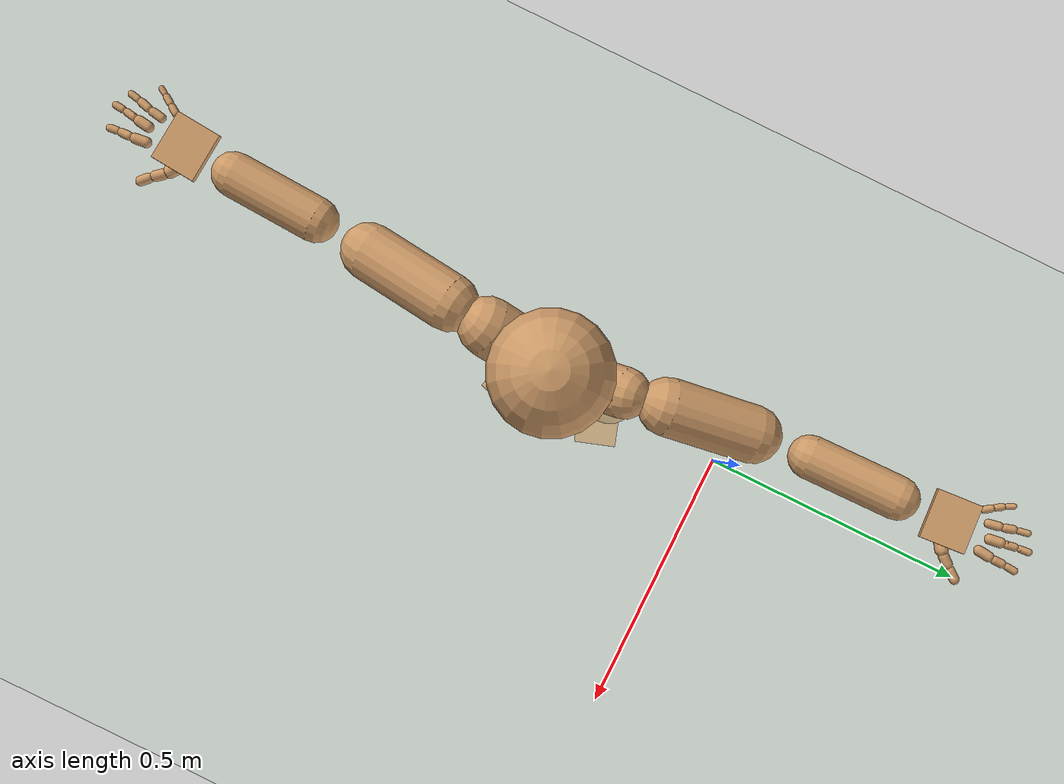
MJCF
<mujoco model="humanoid">
  <compiler coordinate="local" angle="radian"/>
  <default>
    <joint damping="0.0" armature="0.01" stiffness="0.0" limited="true"/>
    <geom conaffinity="1" condim="3" contype="7" margin="0.001" rgba="0.8 0.6 .4 1"/>
  </default>
  <asset>
    <texture type="skybox" builtin="gradient" rgb1=".4 .5 .6" rgb2="0 0 0" width="100" height="100"/>
    <texture builtin="flat" height="1278" mark="cross" markrgb="1 1 1" name="texgeom" random="0.01" rgb1="0.8 0.6 0.4" rgb2="0.8 0.6 0.4" type="cube" width="127"/>
    <texture builtin="checker" height="100" name="texplane" rgb1="0 0 0" rgb2="0.8 0.8 0.8" type="2d" width="100"/>
    <material name="MatPlane" reflectance="0.5" shininess="1" specular="1" texrepeat="60 60" texture="texplane"/>
    <material name="geom" texture="texgeom" texuniform="true"/>
  </asset>
  <worldbody>
    <light cutoff="100" diffuse="1 1 1" dir="-0 0 -1.3" directional="true" exponent="1" pos="0 0 1.3" specular=".1 .1 .1"/>
    <geom conaffinity="1" condim="3" name="floor" pos="0 0 0" rgba="0.8 0.9 0.8 1" size="100 100 .2" type="plane" material="MatPlane"/>
    <body name="Pelvis" pos="0.0006 -0.3352 0.0057">
      <freejoint name="Pelvis"/>
      <geom type="sphere" contype="1" conaffinity="1" density="500" size="0.0934" pos="0.0000 0.0000 0.0000" name="Pelvis"/>
      <body name="L_Hip" pos="-0.0282 0.0543 -0.0882">
        <joint name="L_Hip_x" type="hinge" pos="0 0 0" axis="1 0 0" stiffness="800" damping="80" armature="0.02" range="-180.0000 180.0000"/>
        <joint name="L_Hip_y" type="hinge" pos="0 0 0" axis="0 1 0" stiffness="800" damping="80" armature="0.02" range="-180.0000 180.0000"/>
        <joint name="L_Hip_z" type="hinge" pos="0 0 0" axis="0 0 1" stiffness="800" damping="80" armature="0.02" range="-180.0000 180.0000"/>
        <geom type="capsule" contype="1" conaffinity="1" density="500" fromto="-0.0022 0.0142 -0.0803 -0.0087 0.0569 -0.3213" size="0.0592" name="L_Hip"/>
        <body name="L_Knee" pos="-0.0108 0.0712 -0.4017">
          <joint name="L_Knee_x" type="hinge" pos="0 0 0" axis="1 0 0" stiffness="800" damping="80" armature="0.02" range="-180.0000 180.0000"/>
          <joint name="L_Knee_y" type="hinge" pos="0 0 0" axis="0 1 0" stiffness="800" damping="80" armature="0.02" range="-180.0000 180.0000"/>
          <joint name="L_Knee_z" type="hinge" pos="0 0 0" axis="0 0 1" stiffness="800" damping="80" armature="0.02" range="-180.0000 180.0000"/>
          <geom type="capsule" contype="1" conaffinity="1" density="500" fromto="-0.0081 -0.0087 -0.0831 -0.0324 -0.0348 -0.3323" size="0.0531" name="L_Knee"/>
          <body name="L_Ankle" pos="-0.0405 -0.0435 -0.4153">
            <joint name="L_Ankle_x" type="hinge" pos="0 0 0" axis="1 0 0" stiffness="800" damping="80" armature="0.02" range="-180.0000 180.0000"/>
            <joint name="L_Ankle_y" type="hinge" pos="0 0 0" axis="0 1 0" stiffness="800" damping="80" armature="0.02" range="-180.0000 180.0000"/>
            <joint name="L_Ankle_z" type="hinge" pos="0 0 0" axis="0 0 1" stiffness="800" damping="80" armature="0.02" range="-180.0000 180.0000"/>
            <geom type="box" contype="1" conaffinity="1" density="500" pos="0.0650 0.0215 -0.0295" size="0.0888 0.0505 0.0206" quat="0.9873 0.0000 0.0000 0.1590" name="L_Ankle"/>
            <body name="L_Toe" pos="0.1301 0.043 -0.059">
              <joint name="L_Toe_x" type="hinge" pos="0 0 0" axis="1 0 0" stiffness="500" damping="50" armature="0.02" range="-180.0000 180.0000"/>
              <joint name="L_Toe_y" type="hinge" pos="0 0 0" axis="0 1 0" stiffness="500" damping="50" armature="0.02" range="-180.0000 180.0000"/>
              <joint name="L_Toe_z" type="hinge" pos="0 0 0" axis="0 0 1" stiffness="500" damping="50" armature="0.02" range="-180.0000 180.0000"/>
              <geom type="box" contype="1" conaffinity="1" density="500" pos="0.0000 0.0000 0.0298" size="0.001 0.0024 0.001" quat="0.9865 0.0000 0.0000 0.1635" name="L_Toe"/>
            </body>
          </body>
        </body>
      </body>
      <body name="R_Hip" pos="-0.0216 -0.0552 -0.0974">
        <joint name="R_Hip_x" type="hinge" pos="0 0 0" axis="1 0 0" stiffness="800" damping="80" armature="0.02" range="-180.0000 180.0000"/>
        <joint name="R_Hip_y" type="hinge" pos="0 0 0" axis="0 1 0" stiffness="800" damping="80" armature="0.02" range="-180.0000 180.0000"/>
        <joint name="R_Hip_z" type="hinge" pos="0 0 0" axis="0 0 1" stiffness="800" damping="80" armature="0.02" range="-180.0000 180.0000"/>
        <geom type="capsule" contype="1" conaffinity="1" density="500" fromto="-0.0036 -0.0109 -0.0772 -0.0142 -0.0438 -0.3086" size="0.059" name="R_Hip"/>
        <body name="R_Knee" pos="-0.0178 -0.0547 -0.3858">
          <joint name="R_Knee_x" type="hinge" pos="0 0 0" axis="1 0 0" stiffness="800" damping="80" armature="0.02" range="-180.0000 180.0000"/>
          <joint name="R_Knee_y" type="hinge" pos="0 0 0" axis="0 1 0" stiffness="800" damping="80" armature="0.02" range="-180.0000 180.0000"/>
          <joint name="R_Knee_z" type="hinge" pos="0 0 0" axis="0 0 1" stiffness="800" damping="80" armature="0.02" range="-180.0000 180.0000"/>
          <geom type="capsule" contype="1" conaffinity="1" density="500" fromto="-0.0080 0.0032 -0.0858 -0.0321 0.0128 -0.3431" size="0.053" name="R_Knee"/>
          <body name="R_Ankle" pos="-0.0401 0.016 -0.4288">
            <joint name="R_Ankle_x" type="hinge" pos="0 0 0" axis="1 0 0" stiffness="800" damping="80" armature="0.02" range="-180.0000 180.0000"/>
            <joint name="R_Ankle_y" type="hinge" pos="0 0 0" axis="0 1 0" stiffness="800" damping="80" armature="0.02" range="-180.0000 180.0000"/>
            <joint name="R_Ankle_z" type="hinge" pos="0 0 0" axis="0 0 1" stiffness="800" damping="80" armature="0.02" range="-180.0000 180.0000"/>
            <geom type="box" contype="1" conaffinity="1" density="500" pos="0.0683 -0.0173 -0.0293" size="0.0888 0.0505 0.025" quat="0.9923 0.0000 0.0000 -0.1238" name="R_Ankle"/>
            <body name="R_Toe" pos="0.1366 -0.0346 -0.0585">
              <joint name="R_Toe_x" type="hinge" pos="0 0 0" axis="1 0 0" stiffness="500" damping="50" armature="0.02" range="-180.0000 180.0000"/>
              <joint name="R_Toe_y" type="hinge" pos="0 0 0" axis="0 1 0" stiffness="500" damping="50" armature="0.02" range="-180.0000 180.0000"/>
              <joint name="R_Toe_z" type="hinge" pos="0 0 0" axis="0 0 1" stiffness="500" damping="50" armature="0.02" range="-180.0000 180.0000"/>
              <geom type="box" contype="1" conaffinity="1" density="500" pos="0.0000 0.0000 0.0251" size="0.001 0.0024 0.001" quat="0.9933 0.0000 0.0000 -0.1153" name="R_Toe"/>
            </body>
          </body>
        </body>
      </body>
      <body name="Torso" pos="-0.0329 -0.0017 0.0987">
        <joint name="Torso_x" type="hinge" pos="0 0 0" axis="1 0 0" stiffness="1000" damping="100" armature="0.02" range="-180.0000 180.0000"/>
        <joint name="Torso_y" type="hinge" pos="0 0 0" axis="0 1 0" stiffness="1000" damping="100" armature="0.02" range="-180.0000 180.0000"/>
        <joint name="Torso_z" type="hinge" pos="0 0 0" axis="0 0 1" stiffness="1000" damping="100" armature="0.02" range="-180.0000 180.0000"/>
        <geom type="capsule" contype="1" conaffinity="1" density="500" fromto="0.0026 0.0031 0.0788 0.0017 0.0021 0.0525" size="0.0569" name="Torso"/>
        <body name="Spine" pos="0.0044 0.0052 0.1313">
          <joint name="Spine_x" type="hinge" pos="0 0 0" axis="1 0 0" stiffness="1000" damping="100" armature="0.02" range="-180.0000 180.0000"/>
          <joint name="Spine_y" type="hinge" pos="0 0 0" axis="0 1 0" stiffness="1000" damping="100" armature="0.02" range="-180.0000 180.0000"/>
          <joint name="Spine_z" type="hinge" pos="0 0 0" axis="0 0 1" stiffness="1000" damping="100" armature="0.02" range="-180.0000 180.0000"/>
          <geom type="capsule" contype="1" conaffinity="1" density="500" fromto="0.0108 -0.0028 0.0311 0.0072 -0.0019 0.0207" size="0.0734" name="Spine"/>
          <body name="Chest" pos="0.018 -0.0047 0.0518">
            <joint name="Chest_x" type="hinge" pos="0 0 0" axis="1 0 0" stiffness="1000" damping="100" armature="0.02" range="-180.0000 180.0000"/>
            <joint name="Chest_y" type="hinge" pos="0 0 0" axis="0 1 0" stiffness="1000" damping="100" armature="0.02" range="-180.0000 180.0000"/>
            <joint name="Chest_z" type="hinge" pos="0 0 0" axis="0 0 1" stiffness="1000" damping="100" armature="0.02" range="-180.0000 180.0000"/>
            <geom type="capsule" contype="1" conaffinity="1" density="500" fromto="-0.0068 -0.0012 0.0591 -0.0045 -0.0008 0.0394" size="0.0904" name="Chest"/>
            <body name="Neck" pos="-0.0206 -0.006 0.1539">
              <joint name="Neck_x" type="hinge" pos="0 0 0" axis="1 0 0" stiffness="500" damping="50" armature="0.02" range="-180.0000 180.0000"/>
              <joint name="Neck_y" type="hinge" pos="0 0 0" axis="0 1 0" stiffness="500" damping="50" armature="0.02" range="-180.0000 180.0000"/>
              <joint name="Neck_z" type="hinge" pos="0 0 0" axis="0 0 1" stiffness="500" damping="50" armature="0.02" range="-180.0000 180.0000"/>
              <geom type="capsule" contype="1" conaffinity="1" density="500" fromto="0.0068 0.0037 0.0358 0.0273 0.0148 0.1432" size="0.0387" name="Neck"/>
              <body name="Head" pos="0.0341 0.0185 0.179">
                <joint name="Head_x" type="hinge" pos="0 0 0" axis="1 0 0" stiffness="500" damping="50" armature="0.02" range="-180.0000 180.0000"/>
                <joint name="Head_y" type="hinge" pos="0 0 0" axis="0 1 0" stiffness="500" damping="50" armature="0.02" range="-180.0000 180.0000"/>
                <joint name="Head_z" type="hinge" pos="0 0 0" axis="0 0 1" stiffness="500" damping="50" armature="0.02" range="-180.0000 180.0000"/>
                <geom type="sphere" contype="1" conaffinity="1" density="500" size="0.0984" pos="0.0000 0.0000 0.0000" name="Head"/>
              </body>
            </body>
            <body name="L_Thorax" pos="-0.005 0.0358 0.0707">
              <joint name="L_Thorax_x" type="hinge" pos="0 0 0" axis="1 0 0" stiffness="500" damping="50" armature="0.02" range="-180.0000 180.0000"/>
              <joint name="L_Thorax_y" type="hinge" pos="0 0 0" axis="0 1 0" stiffness="500" damping="50" armature="0.02" range="-180.0000 180.0000"/>
              <joint name="L_Thorax_z" type="hinge" pos="0 0 0" axis="0 0 1" stiffness="500" damping="50" armature="0.02" range="-180.0000 180.0000"/>
              <geom type="capsule" contype="1" conaffinity="1" density="500" fromto="-0.0029 0.0226 0.0101 -0.0115 0.0905 0.0406" size="0.0433" name="L_Thorax"/>
              <body name="L_Shoulder" pos="-0.0144 0.1131 0.0507">
                <joint name="L_Shoulder_x" type="hinge" pos="0 0 0" axis="1 0 0" stiffness="500" damping="50" armature="0.02" range="-180.0000 180.0000"/>
                <joint name="L_Shoulder_y" type="hinge" pos="0 0 0" axis="0 1 0" stiffness="500" damping="50" armature="0.02" range="-180.0000 180.0000"/>
                <joint name="L_Shoulder_z" type="hinge" pos="0 0 0" axis="0 0 1" stiffness="500" damping="50" armature="0.02" range="-180.0000 180.0000"/>
                <geom type="capsule" contype="1" conaffinity="1" density="500" fromto="-0.0077 0.0496 -0.0143 -0.0310 0.1985 -0.0573" size="0.0492" name="L_Shoulder"/>
                <body name="L_Elbow" pos="-0.0387 0.2481 -0.0716">
                  <joint name="L_Elbow_x" type="hinge" pos="0 0 0" axis="1 0 0" stiffness="500" damping="50" armature="0.02" range="-720.0000 720.0000"/>
                  <joint name="L_Elbow_y" type="hinge" pos="0 0 0" axis="0 1 0" stiffness="500" damping="50" armature="0.02" range="-720.0000 720.0000"/>
                  <joint name="L_Elbow_z" type="hinge" pos="0 0 0" axis="0 0 1" stiffness="500" damping="50" armature="0.02" range="-720.0000 720.0000"/>
                  <geom type="capsule" contype="1" conaffinity="1" density="500" fromto="-0.0008 0.0531 0.0040 -0.0031 0.2124 0.0160" size="0.0373" name="L_Elbow"/>
                  <body name="L_Wrist" pos="-0.0039 0.2655 0.02">
                    <joint name="L_Wrist_x" type="hinge" pos="0 0 0" axis="1 0 0" stiffness="300" damping="30" armature="0.02" range="-180.0000 180.0000"/>
                    <joint name="L_Wrist_y" type="hinge" pos="0 0 0" axis="0 1 0" stiffness="300" damping="30" armature="0.02" range="-180.0000 180.0000"/>
                    <joint name="L_Wrist_z" type="hinge" pos="0 0 0" axis="0 0 1" stiffness="300" damping="30" armature="0.02" range="-180.0000 180.0000"/>
                    <geom type="box" contype="1" conaffinity="1" density="500" pos="-0.0031 0.0427 -0.0060" size="0.0396 0.0426 0.0071" quat="0.7326 0.0000 0.0000 -0.6807" name="L_Wrist"/>
                    <body name="L_Index1" pos="0.0188 0.1002 -0.0094">
                      <joint name="L_Index1_x" type="hinge" pos="0 0 0" axis="1 0 0" stiffness="100" damping="10" armature="0.02" range="-180.0000 180.0000"/>
                      <joint name="L_Index1_y" type="hinge" pos="0 0 0" axis="0 1 0" stiffness="100" damping="10" armature="0.02" range="-180.0000 180.0000"/>
                      <joint name="L_Index1_z" type="hinge" pos="0 0 0" axis="0 0 1" stiffness="100" damping="10" armature="0.02" range="-180.0000 180.0000"/>
                      <geom type="capsule" contype="1" conaffinity="1" density="500" fromto="0.0007 0.0065 0.0002 0.0029 0.0259 0.0010" size="0.0089" name="L_Index1"/>
                      <body name="L_Index2" pos="0.0037 0.0324 0.0012">
                        <joint name="L_Index2_x" type="hinge" pos="0 0 0" axis="1 0 0" stiffness="100" damping="10" armature="0.02" range="-180.0000 180.0000"/>
                        <joint name="L_Index2_y" type="hinge" pos="0 0 0" axis="0 1 0" stiffness="100" damping="10" armature="0.02" range="-180.0000 180.0000"/>
                        <joint name="L_Index2_z" type="hinge" pos="0 0 0" axis="0 0 1" stiffness="100" damping="10" armature="0.02" range="-180.0000 180.0000"/>
                        <geom type="capsule" contype="1" conaffinity="1" density="500" fromto="0.0000 0.0046 -0.0005 0.0001 0.0183 -0.0021" size="0.0074" name="L_Index2"/>
                        <body name="L_Index3" pos="0.0001 0.0228 -0.0027">
                          <joint name="L_Index3_x" type="hinge" pos="0 0 0" axis="1 0 0" stiffness="100" damping="10" armature="0.02" range="-180.0000 180.0000"/>
                          <joint name="L_Index3_y" type="hinge" pos="0 0 0" axis="0 1 0" stiffness="100" damping="10" armature="0.02" range="-180.0000 180.0000"/>
                          <joint name="L_Index3_z" type="hinge" pos="0 0 0" axis="0 0 1" stiffness="100" damping="10" armature="0.02" range="-180.0000 180.0000"/>
                          <geom type="capsule" contype="1" conaffinity="1" density="500" fromto="0.0004 0.0050 -0.0001 0.0017 0.0199 -0.0005" size="0.0063" name="L_Index3"/>
                        </body>
                      </body>
                    </body>
                    <body name="L_Middle1" pos="-0.0042 0.1079 -0.007">
                      <joint name="L_Middle1_x" type="hinge" pos="0 0 0" axis="1 0 0" stiffness="100" damping="10" armature="0.02" range="-180.0000 180.0000"/>
                      <joint name="L_Middle1_y" type="hinge" pos="0 0 0" axis="0 1 0" stiffness="100" damping="10" armature="0.02" range="-180.0000 180.0000"/>
                      <joint name="L_Middle1_z" type="hinge" pos="0 0 0" axis="0 0 1" stiffness="100" damping="10" armature="0.02" range="-180.0000 180.0000"/>
                      <geom type="capsule" contype="1" conaffinity="1" density="500" fromto="-0.0008 0.0062 0.0000 -0.0033 0.0246 0.0001" size="0.009" name="L_Middle1"/>
                      <body name="L_Middle2" pos="-0.0041 0.0308 0.0001">
                        <joint name="L_Middle2_x" type="hinge" pos="0 0 0" axis="1 0 0" stiffness="100" damping="10" armature="0.02" range="-180.0000 180.0000"/>
                        <joint name="L_Middle2_y" type="hinge" pos="0 0 0" axis="0 1 0" stiffness="100" damping="10" armature="0.02" range="-180.0000 180.0000"/>
                        <joint name="L_Middle2_z" type="hinge" pos="0 0 0" axis="0 0 1" stiffness="100" damping="10" armature="0.02" range="-180.0000 180.0000"/>
                        <geom type="capsule" contype="1" conaffinity="1" density="500" fromto="-0.0008 0.0047 -0.0004 -0.0033 0.0189 -0.0018" size="0.0067" name="L_Middle2"/>
                        <body name="L_Middle3" pos="-0.0041 0.0236 -0.0022">
                          <joint name="L_Middle3_x" type="hinge" pos="0 0 0" axis="1 0 0" stiffness="100" damping="10" armature="0.02" range="-180.0000 180.0000"/>
                          <joint name="L_Middle3_y" type="hinge" pos="0 0 0" axis="0 1 0" stiffness="100" damping="10" armature="0.02" range="-180.0000 180.0000"/>
                          <joint name="L_Middle3_z" type="hinge" pos="0 0 0" axis="0 0 1" stiffness="100" damping="10" armature="0.02" range="-180.0000 180.0000"/>
                          <geom type="capsule" contype="1" conaffinity="1" density="500" fromto="-0.0004 0.0051 -0.0000 -0.0017 0.0205 -0.0002" size="0.0061" name="L_Middle3"/>
                        </body>
                      </body>
                    </body>
                    <body name="L_Pinky1" pos="-0.0435 0.0834 -0.0148">
                      <joint name="L_Pinky1_x" type="hinge" pos="0 0 0" axis="1 0 0" stiffness="100" damping="10" armature="0.02" range="-180.0000 180.0000"/>
                      <joint name="L_Pinky1_y" type="hinge" pos="0 0 0" axis="0 1 0" stiffness="100" damping="10" armature="0.02" range="-180.0000 180.0000"/>
                      <joint name="L_Pinky1_z" type="hinge" pos="0 0 0" axis="0 0 1" stiffness="100" damping="10" armature="0.02" range="-180.0000 180.0000"/>
                      <geom type="capsule" contype="1" conaffinity="1" density="500" fromto="-0.0023 0.0032 -0.0004 -0.0091 0.0130 -0.0014" size="0.0065" name="L_Pinky1"/>
                      <body name="L_Pinky2" pos="-0.0114 0.0162 -0.0018">
                        <joint name="L_Pinky2_x" type="hinge" pos="0 0 0" axis="1 0 0" stiffness="100" damping="10" armature="0.02" range="-180.0000 180.0000"/>
                        <joint name="L_Pinky2_y" type="hinge" pos="0 0 0" axis="0 1 0" stiffness="100" damping="10" armature="0.02" range="-180.0000 180.0000"/>
                        <joint name="L_Pinky2_z" type="hinge" pos="0 0 0" axis="0 0 1" stiffness="100" damping="10" armature="0.02" range="-180.0000 180.0000"/>
                        <geom type="capsule" contype="1" conaffinity="1" density="500" fromto="-0.0022 0.0032 -0.0004 -0.0086 0.0128 -0.0014" size="0.0062" name="L_Pinky2"/>
                        <body name="L_Pinky3" pos="-0.0108 0.016 -0.0018">
                          <joint name="L_Pinky3_x" type="hinge" pos="0 0 0" axis="1 0 0" stiffness="100" damping="10" armature="0.02" range="-180.0000 180.0000"/>
                          <joint name="L_Pinky3_y" type="hinge" pos="0 0 0" axis="0 1 0" stiffness="100" damping="10" armature="0.02" range="-180.0000 180.0000"/>
                          <joint name="L_Pinky3_z" type="hinge" pos="0 0 0" axis="0 0 1" stiffness="100" damping="10" armature="0.02" range="-180.0000 180.0000"/>
                          <geom type="capsule" contype="1" conaffinity="1" density="500" fromto="-0.0018 0.0036 0.0000 -0.0070 0.0144 0.0002" size="0.0048" name="L_Pinky3"/>
                        </body>
                      </body>
                    </body>
                    <body name="L_Ring1" pos="-0.0271 0.0963 -0.0097">
                      <joint name="L_Ring1_x" type="hinge" pos="0 0 0" axis="1 0 0" stiffness="100" damping="10" armature="0.02" range="-180.0000 180.0000"/>
                      <joint name="L_Ring1_y" type="hinge" pos="0 0 0" axis="0 1 0" stiffness="100" damping="10" armature="0.02" range="-180.0000 180.0000"/>
                      <joint name="L_Ring1_z" type="hinge" pos="0 0 0" axis="0 0 1" stiffness="100" damping="10" armature="0.02" range="-180.0000 180.0000"/>
                      <geom type="capsule" contype="1" conaffinity="1" density="500" fromto="-0.0009 0.0057 0.0001 -0.0038 0.0228 0.0005" size="0.0077" name="L_Ring1"/>
                      <body name="L_Ring2" pos="-0.0047 0.0285 0.0006">
                        <joint name="L_Ring2_x" type="hinge" pos="0 0 0" axis="1 0 0" stiffness="100" damping="10" armature="0.02" range="-180.0000 180.0000"/>
                        <joint name="L_Ring2_y" type="hinge" pos="0 0 0" axis="0 1 0" stiffness="100" damping="10" armature="0.02" range="-180.0000 180.0000"/>
                        <joint name="L_Ring2_z" type="hinge" pos="0 0 0" axis="0 0 1" stiffness="100" damping="10" armature="0.02" range="-180.0000 180.0000"/>
                        <geom type="capsule" contype="1" conaffinity="1" density="500" fromto="-0.0013 0.0046 -0.0004 -0.0052 0.0186 -0.0016" size="0.0073" name="L_Ring2"/>
                        <body name="L_Ring3" pos="-0.0065 0.0232 -0.002">
                          <joint name="L_Ring3_x" type="hinge" pos="0 0 0" axis="1 0 0" stiffness="100" damping="10" armature="0.02" range="-180.0000 180.0000"/>
                          <joint name="L_Ring3_y" type="hinge" pos="0 0 0" axis="0 1 0" stiffness="100" damping="10" armature="0.02" range="-180.0000 180.0000"/>
                          <joint name="L_Ring3_z" type="hinge" pos="0 0 0" axis="0 0 1" stiffness="100" damping="10" armature="0.02" range="-180.0000 180.0000"/>
                          <geom type="capsule" contype="1" conaffinity="1" density="500" fromto="-0.0009 0.0050 -0.0000 -0.0036 0.0202 -0.0000" size="0.0057" name="L_Ring3"/>
                        </body>
                      </body>
                    </body>
                    <body name="L_Thumb1" pos="0.0246 0.0397 -0.0193">
                      <joint name="L_Thumb1_x" type="hinge" pos="0 0 0" axis="1 0 0" stiffness="100" damping="10" armature="0.02" range="-180.0000 180.0000"/>
                      <joint name="L_Thumb1_y" type="hinge" pos="0 0 0" axis="0 1 0" stiffness="100" damping="10" armature="0.02" range="-180.0000 180.0000"/>
                      <joint name="L_Thumb1_z" type="hinge" pos="0 0 0" axis="0 0 1" stiffness="100" damping="10" armature="0.02" range="-180.0000 180.0000"/>
                      <geom type="capsule" contype="1" conaffinity="1" density="500" fromto="0.0051 0.0033 0.0003 0.0203 0.0133 0.0012" size="0.0118" name="L_Thumb1"/>
                      <body name="L_Thumb2" pos="0.0254 0.0166 0.0015">
                        <joint name="L_Thumb2_x" type="hinge" pos="0 0 0" axis="1 0 0" stiffness="100" damping="10" armature="0.02" range="-180.0000 180.0000"/>
                        <joint name="L_Thumb2_y" type="hinge" pos="0 0 0" axis="0 1 0" stiffness="100" damping="10" armature="0.02" range="-180.0000 180.0000"/>
                        <joint name="L_Thumb2_z" type="hinge" pos="0 0 0" axis="0 0 1" stiffness="100" damping="10" armature="0.02" range="-180.0000 180.0000"/>
                        <geom type="capsule" contype="1" conaffinity="1" density="500" fromto="0.0032 0.0041 -0.0008 0.0128 0.0165 -0.0032" size="0.0093" name="L_Thumb2"/>
                        <body name="L_Thumb3" pos="0.0161 0.0207 -0.004">
                          <joint name="L_Thumb3_x" type="hinge" pos="0 0 0" axis="1 0 0" stiffness="100" damping="10" armature="0.02" range="-180.0000 180.0000"/>
                          <joint name="L_Thumb3_y" type="hinge" pos="0 0 0" axis="0 1 0" stiffness="100" damping="10" armature="0.02" range="-180.0000 180.0000"/>
                          <joint name="L_Thumb3_z" type="hinge" pos="0 0 0" axis="0 0 1" stiffness="100" damping="10" armature="0.02" range="-180.0000 180.0000"/>
                          <geom type="capsule" contype="1" conaffinity="1" density="500" fromto="0.0036 0.0045 -0.0004 0.0144 0.0181 -0.0016" size="0.0084" name="L_Thumb3"/>
                        </body>
                      </body>
                    </body>
                  </body>
                </body>
              </body>
            </body>
            <body name="R_Thorax" pos="-0.0084 -0.0358 0.0709">
              <joint name="R_Thorax_x" type="hinge" pos="0 0 0" axis="1 0 0" stiffness="500" damping="50" armature="0.02" range="-180.0000 180.0000"/>
              <joint name="R_Thorax_y" type="hinge" pos="0 0 0" axis="0 1 0" stiffness="500" damping="50" armature="0.02" range="-180.0000 180.0000"/>
              <joint name="R_Thorax_z" type="hinge" pos="0 0 0" axis="0 0 1" stiffness="500" damping="50" armature="0.02" range="-180.0000 180.0000"/>
              <geom type="capsule" contype="1" conaffinity="1" density="500" fromto="-0.0018 -0.0212 0.0102 -0.0072 -0.0847 0.0408" size="0.0505" name="R_Thorax"/>
              <body name="R_Shoulder" pos="-0.009 -0.1059 0.051">
                <joint name="R_Shoulder_x" type="hinge" pos="0 0 0" axis="1 0 0" stiffness="500" damping="50" armature="0.02" range="-180.0000 180.0000"/>
                <joint name="R_Shoulder_y" type="hinge" pos="0 0 0" axis="0 1 0" stiffness="500" damping="50" armature="0.02" range="-180.0000 180.0000"/>
                <joint name="R_Shoulder_z" type="hinge" pos="0 0 0" axis="0 0 1" stiffness="500" damping="50" armature="0.02" range="-180.0000 180.0000"/>
                <geom type="capsule" contype="1" conaffinity="1" density="500" fromto="-0.0061 -0.0525 -0.0094 -0.0244 -0.2099 -0.0375" size="0.0486" name="R_Shoulder"/>
                <body name="R_Elbow" pos="-0.0304 -0.2624 -0.0469">
                  <joint name="R_Elbow_x" type="hinge" pos="0 0 0" axis="1 0 0" stiffness="500" damping="50" armature="0.02" range="-720.0000 720.0000"/>
                  <joint name="R_Elbow_y" type="hinge" pos="0 0 0" axis="0 1 0" stiffness="500" damping="50" armature="0.02" range="-720.0000 720.0000"/>
                  <joint name="R_Elbow_z" type="hinge" pos="0 0 0" axis="0 0 1" stiffness="500" damping="50" armature="0.02" range="-720.0000 720.0000"/>
                  <geom type="capsule" contype="1" conaffinity="1" density="500" fromto="-0.0027 -0.0515 -0.0004 -0.0106 -0.2058 -0.0015" size="0.0382" name="R_Elbow"/>
                  <body name="R_Wrist" pos="-0.0133 -0.2573 -0.0019">
                    <joint name="R_Wrist_x" type="hinge" pos="0 0 0" axis="1 0 0" stiffness="300" damping="30" armature="0.02" range="-180.0000 180.0000"/>
                    <joint name="R_Wrist_y" type="hinge" pos="0 0 0" axis="0 1 0" stiffness="300" damping="30" armature="0.02" range="-180.0000 180.0000"/>
                    <joint name="R_Wrist_z" type="hinge" pos="0 0 0" axis="0 0 1" stiffness="300" damping="30" armature="0.02" range="-180.0000 180.0000"/>
                    <geom type="box" contype="1" conaffinity="1" density="500" pos="-0.0036 -0.0426 -0.0076" size="0.0396 0.0438 0.0073" quat="0.7360 0.0000 0.0000 0.6769" name="R_Wrist"/>
                    <body name="R_Index1" pos="0.0179 -0.1 -0.0126">
                      <joint name="R_Index1_x" type="hinge" pos="0 0 0" axis="1 0 0" stiffness="100" damping="10" armature="0.02" range="-180.0000 180.0000"/>
                      <joint name="R_Index1_y" type="hinge" pos="0 0 0" axis="0 1 0" stiffness="100" damping="10" armature="0.02" range="-180.0000 180.0000"/>
                      <joint name="R_Index1_z" type="hinge" pos="0 0 0" axis="0 0 1" stiffness="100" damping="10" armature="0.02" range="-180.0000 180.0000"/>
                      <geom type="capsule" contype="1" conaffinity="1" density="500" fromto="0.0007 -0.0065 0.0002 0.0029 -0.0259 0.0010" size="0.009" name="R_Index1"/>
                      <body name="R_Index2" pos="0.0037 -0.0324 0.0012">
                        <joint name="R_Index2_x" type="hinge" pos="0 0 0" axis="1 0 0" stiffness="100" damping="10" armature="0.02" range="-180.0000 180.0000"/>
                        <joint name="R_Index2_y" type="hinge" pos="0 0 0" axis="0 1 0" stiffness="100" damping="10" armature="0.02" range="-180.0000 180.0000"/>
                        <joint name="R_Index2_z" type="hinge" pos="0 0 0" axis="0 0 1" stiffness="100" damping="10" armature="0.02" range="-180.0000 180.0000"/>
                        <geom type="capsule" contype="1" conaffinity="1" density="500" fromto="0.0000 -0.0046 -0.0005 0.0001 -0.0183 -0.0021" size="0.0074" name="R_Index2"/>
                        <body name="R_Index3" pos="0.0001 -0.0228 -0.0027">
                          <joint name="R_Index3_x" type="hinge" pos="0 0 0" axis="1 0 0" stiffness="100" damping="10" armature="0.02" range="-180.0000 180.0000"/>
                          <joint name="R_Index3_y" type="hinge" pos="0 0 0" axis="0 1 0" stiffness="100" damping="10" armature="0.02" range="-180.0000 180.0000"/>
                          <joint name="R_Index3_z" type="hinge" pos="0 0 0" axis="0 0 1" stiffness="100" damping="10" armature="0.02" range="-180.0000 180.0000"/>
                          <geom type="capsule" contype="1" conaffinity="1" density="500" fromto="0.0004 -0.0042 -0.0001 0.0017 -0.0167 -0.0005" size="0.0066" name="R_Index3"/>
                        </body>
                      </body>
                    </body>
                    <body name="R_Middle1" pos="-0.005 -0.1077 -0.0103">
                      <joint name="R_Middle1_x" type="hinge" pos="0 0 0" axis="1 0 0" stiffness="100" damping="10" armature="0.02" range="-180.0000 180.0000"/>
                      <joint name="R_Middle1_y" type="hinge" pos="0 0 0" axis="0 1 0" stiffness="100" damping="10" armature="0.02" range="-180.0000 180.0000"/>
                      <joint name="R_Middle1_z" type="hinge" pos="0 0 0" axis="0 0 1" stiffness="100" damping="10" armature="0.02" range="-180.0000 180.0000"/>
                      <geom type="capsule" contype="1" conaffinity="1" density="500" fromto="-0.0008 -0.0062 0.0000 -0.0033 -0.0246 0.0001" size="0.0091" name="R_Middle1"/>
                      <body name="R_Middle2" pos="-0.0041 -0.0308 0.0001">
                        <joint name="R_Middle2_x" type="hinge" pos="0 0 0" axis="1 0 0" stiffness="100" damping="10" armature="0.02" range="-180.0000 180.0000"/>
                        <joint name="R_Middle2_y" type="hinge" pos="0 0 0" axis="0 1 0" stiffness="100" damping="10" armature="0.02" range="-180.0000 180.0000"/>
                        <joint name="R_Middle2_z" type="hinge" pos="0 0 0" axis="0 0 1" stiffness="100" damping="10" armature="0.02" range="-180.0000 180.0000"/>
                        <geom type="capsule" contype="1" conaffinity="1" density="500" fromto="-0.0008 -0.0047 -0.0004 -0.0033 -0.0189 -0.0018" size="0.0067" name="R_Middle2"/>
                        <body name="R_Middle3" pos="-0.0041 -0.0236 -0.0022">
                          <joint name="R_Middle3_x" type="hinge" pos="0 0 0" axis="1 0 0" stiffness="100" damping="10" armature="0.02" range="-180.0000 180.0000"/>
                          <joint name="R_Middle3_y" type="hinge" pos="0 0 0" axis="0 1 0" stiffness="100" damping="10" armature="0.02" range="-180.0000 180.0000"/>
                          <joint name="R_Middle3_z" type="hinge" pos="0 0 0" axis="0 0 1" stiffness="100" damping="10" armature="0.02" range="-180.0000 180.0000"/>
                          <geom type="capsule" contype="1" conaffinity="1" density="500" fromto="-0.0004 -0.0043 -0.0000 -0.0017 -0.0173 -0.0002" size="0.0064" name="R_Middle3"/>
                        </body>
                      </body>
                    </body>
                    <body name="R_Pinky1" pos="-0.0443 -0.0831 -0.018">
                      <joint name="R_Pinky1_x" type="hinge" pos="0 0 0" axis="1 0 0" stiffness="100" damping="10" armature="0.02" range="-180.0000 180.0000"/>
                      <joint name="R_Pinky1_y" type="hinge" pos="0 0 0" axis="0 1 0" stiffness="100" damping="10" armature="0.02" range="-180.0000 180.0000"/>
                      <joint name="R_Pinky1_z" type="hinge" pos="0 0 0" axis="0 0 1" stiffness="100" damping="10" armature="0.02" range="-180.0000 180.0000"/>
                      <geom type="capsule" contype="1" conaffinity="1" density="500" fromto="-0.0023 -0.0032 -0.0004 -0.0091 -0.0130 -0.0014" size="0.0065" name="R_Pinky1"/>
                      <body name="R_Pinky2" pos="-0.0114 -0.0162 -0.0018">
                        <joint name="R_Pinky2_x" type="hinge" pos="0 0 0" axis="1 0 0" stiffness="100" damping="10" armature="0.02" range="-180.0000 180.0000"/>
                        <joint name="R_Pinky2_y" type="hinge" pos="0 0 0" axis="0 1 0" stiffness="100" damping="10" armature="0.02" range="-180.0000 180.0000"/>
                        <joint name="R_Pinky2_z" type="hinge" pos="0 0 0" axis="0 0 1" stiffness="100" damping="10" armature="0.02" range="-180.0000 180.0000"/>
                        <geom type="capsule" contype="1" conaffinity="1" density="500" fromto="-0.0022 -0.0032 -0.0004 -0.0086 -0.0128 -0.0014" size="0.0062" name="R_Pinky2"/>
                        <body name="R_Pinky3" pos="-0.0108 -0.016 -0.0018">
                          <joint name="R_Pinky3_x" type="hinge" pos="0 0 0" axis="1 0 0" stiffness="100" damping="10" armature="0.02" range="-180.0000 180.0000"/>
                          <joint name="R_Pinky3_y" type="hinge" pos="0 0 0" axis="0 1 0" stiffness="100" damping="10" armature="0.02" range="-180.0000 180.0000"/>
                          <joint name="R_Pinky3_z" type="hinge" pos="0 0 0" axis="0 0 1" stiffness="100" damping="10" armature="0.02" range="-180.0000 180.0000"/>
                          <geom type="capsule" contype="1" conaffinity="1" density="500" fromto="-0.0018 -0.0028 0.0000 -0.0070 -0.0112 0.0002" size="0.0051" name="R_Pinky3"/>
                        </body>
                      </body>
                    </body>
                    <body name="R_Ring1" pos="-0.028 -0.0961 -0.0129">
                      <joint name="R_Ring1_x" type="hinge" pos="0 0 0" axis="1 0 0" stiffness="100" damping="10" armature="0.02" range="-180.0000 180.0000"/>
                      <joint name="R_Ring1_y" type="hinge" pos="0 0 0" axis="0 1 0" stiffness="100" damping="10" armature="0.02" range="-180.0000 180.0000"/>
                      <joint name="R_Ring1_z" type="hinge" pos="0 0 0" axis="0 0 1" stiffness="100" damping="10" armature="0.02" range="-180.0000 180.0000"/>
                      <geom type="capsule" contype="1" conaffinity="1" density="500" fromto="-0.0009 -0.0057 0.0001 -0.0038 -0.0228 0.0005" size="0.0077" name="R_Ring1"/>
                      <body name="R_Ring2" pos="-0.0047 -0.0285 0.0006">
                        <joint name="R_Ring2_x" type="hinge" pos="0 0 0" axis="1 0 0" stiffness="100" damping="10" armature="0.02" range="-180.0000 180.0000"/>
                        <joint name="R_Ring2_y" type="hinge" pos="0 0 0" axis="0 1 0" stiffness="100" damping="10" armature="0.02" range="-180.0000 180.0000"/>
                        <joint name="R_Ring2_z" type="hinge" pos="0 0 0" axis="0 0 1" stiffness="100" damping="10" armature="0.02" range="-180.0000 180.0000"/>
                        <geom type="capsule" contype="1" conaffinity="1" density="500" fromto="-0.0013 -0.0046 -0.0004 -0.0052 -0.0186 -0.0016" size="0.0073" name="R_Ring2"/>
                        <body name="R_Ring3" pos="-0.0065 -0.0232 -0.002">
                          <joint name="R_Ring3_x" type="hinge" pos="0 0 0" axis="1 0 0" stiffness="100" damping="10" armature="0.02" range="-180.0000 180.0000"/>
                          <joint name="R_Ring3_y" type="hinge" pos="0 0 0" axis="0 1 0" stiffness="100" damping="10" armature="0.02" range="-180.0000 180.0000"/>
                          <joint name="R_Ring3_z" type="hinge" pos="0 0 0" axis="0 0 1" stiffness="100" damping="10" armature="0.02" range="-180.0000 180.0000"/>
                          <geom type="capsule" contype="1" conaffinity="1" density="500" fromto="-0.0009 -0.0042 -0.0000 -0.0036 -0.0170 -0.0000" size="0.006" name="R_Ring3"/>
                        </body>
                      </body>
                    </body>
                    <body name="R_Thumb1" pos="0.0237 -0.0394 -0.0225">
                      <joint name="R_Thumb1_x" type="hinge" pos="0 0 0" axis="1 0 0" stiffness="100" damping="10" armature="0.02" range="-180.0000 180.0000"/>
                      <joint name="R_Thumb1_y" type="hinge" pos="0 0 0" axis="0 1 0" stiffness="100" damping="10" armature="0.02" range="-180.0000 180.0000"/>
                      <joint name="R_Thumb1_z" type="hinge" pos="0 0 0" axis="0 0 1" stiffness="100" damping="10" armature="0.02" range="-180.0000 180.0000"/>
                      <geom type="capsule" contype="1" conaffinity="1" density="500" fromto="0.0051 -0.0033 0.0003 0.0203 -0.0133 0.0012" size="0.0118" name="R_Thumb1"/>
                      <body name="R_Thumb2" pos="0.0254 -0.0166 0.0015">
                        <joint name="R_Thumb2_x" type="hinge" pos="0 0 0" axis="1 0 0" stiffness="100" damping="10" armature="0.02" range="-180.0000 180.0000"/>
                        <joint name="R_Thumb2_y" type="hinge" pos="0 0 0" axis="0 1 0" stiffness="100" damping="10" armature="0.02" range="-180.0000 180.0000"/>
                        <joint name="R_Thumb2_z" type="hinge" pos="0 0 0" axis="0 0 1" stiffness="100" damping="10" armature="0.02" range="-180.0000 180.0000"/>
                        <geom type="capsule" contype="1" conaffinity="1" density="500" fromto="0.0032 -0.0041 -0.0008 0.0128 -0.0165 -0.0032" size="0.0093" name="R_Thumb2"/>
                        <body name="R_Thumb3" pos="0.0161 -0.0207 -0.004">
                          <joint name="R_Thumb3_x" type="hinge" pos="0 0 0" axis="1 0 0" stiffness="100" damping="10" armature="0.02" range="-180.0000 180.0000"/>
                          <joint name="R_Thumb3_y" type="hinge" pos="0 0 0" axis="0 1 0" stiffness="100" damping="10" armature="0.02" range="-180.0000 180.0000"/>
                          <joint name="R_Thumb3_z" type="hinge" pos="0 0 0" axis="0 0 1" stiffness="100" damping="10" armature="0.02" range="-180.0000 180.0000"/>
                          <geom type="capsule" contype="1" conaffinity="1" density="500" fromto="0.0036 -0.0037 -0.0004 0.0144 -0.0149 -0.0016" size="0.0087" name="R_Thumb3"/>
                        </body>
                      </body>
                    </body>
                  </body>
                </body>
              </body>
            </body>
          </body>
        </body>
      </body>
    </body>
  </worldbody>
  <actuator>
    <motor name="L_Hip_x" joint="L_Hip_x" gear="500"/>
    <motor name="L_Hip_y" joint="L_Hip_y" gear="500"/>
    <motor name="L_Hip_z" joint="L_Hip_z" gear="500"/>
    <motor name="L_Knee_x" joint="L_Knee_x" gear="500"/>
    <motor name="L_Knee_y" joint="L_Knee_y" gear="500"/>
    <motor name="L_Knee_z" joint="L_Knee_z" gear="500"/>
    <motor name="L_Ankle_x" joint="L_Ankle_x" gear="500"/>
    <motor name="L_Ankle_y" joint="L_Ankle_y" gear="500"/>
    <motor name="L_Ankle_z" joint="L_Ankle_z" gear="500"/>
    <motor name="L_Toe_x" joint="L_Toe_x" gear="500"/>
    <motor name="L_Toe_y" joint="L_Toe_y" gear="500"/>
    <motor name="L_Toe_z" joint="L_Toe_z" gear="500"/>
    <motor name="R_Hip_x" joint="R_Hip_x" gear="500"/>
    <motor name="R_Hip_y" joint="R_Hip_y" gear="500"/>
    <motor name="R_Hip_z" joint="R_Hip_z" gear="500"/>
    <motor name="R_Knee_x" joint="R_Knee_x" gear="500"/>
    <motor name="R_Knee_y" joint="R_Knee_y" gear="500"/>
    <motor name="R_Knee_z" joint="R_Knee_z" gear="500"/>
    <motor name="R_Ankle_x" joint="R_Ankle_x" gear="500"/>
    <motor name="R_Ankle_y" joint="R_Ankle_y" gear="500"/>
    <motor name="R_Ankle_z" joint="R_Ankle_z" gear="500"/>
    <motor name="R_Toe_x" joint="R_Toe_x" gear="500"/>
    <motor name="R_Toe_y" joint="R_Toe_y" gear="500"/>
    <motor name="R_Toe_z" joint="R_Toe_z" gear="500"/>
    <motor name="Torso_x" joint="Torso_x" gear="500"/>
    <motor name="Torso_y" joint="Torso_y" gear="500"/>
    <motor name="Torso_z" joint="Torso_z" gear="500"/>
    <motor name="Spine_x" joint="Spine_x" gear="500"/>
    <motor name="Spine_y" joint="Spine_y" gear="500"/>
    <motor name="Spine_z" joint="Spine_z" gear="500"/>
    <motor name="Chest_x" joint="Chest_x" gear="500"/>
    <motor name="Chest_y" joint="Chest_y" gear="500"/>
    <motor name="Chest_z" joint="Chest_z" gear="500"/>
    <motor name="Neck_x" joint="Neck_x" gear="500"/>
    <motor name="Neck_y" joint="Neck_y" gear="500"/>
    <motor name="Neck_z" joint="Neck_z" gear="500"/>
    <motor name="Head_x" joint="Head_x" gear="500"/>
    <motor name="Head_y" joint="Head_y" gear="500"/>
    <motor name="Head_z" joint="Head_z" gear="500"/>
    <motor name="L_Thorax_x" joint="L_Thorax_x" gear="500"/>
    <motor name="L_Thorax_y" joint="L_Thorax_y" gear="500"/>
    <motor name="L_Thorax_z" joint="L_Thorax_z" gear="500"/>
    <motor name="L_Shoulder_x" joint="L_Shoulder_x" gear="500"/>
    <motor name="L_Shoulder_y" joint="L_Shoulder_y" gear="500"/>
    <motor name="L_Shoulder_z" joint="L_Shoulder_z" gear="500"/>
    <motor name="L_Elbow_x" joint="L_Elbow_x" gear="500"/>
    <motor name="L_Elbow_y" joint="L_Elbow_y" gear="500"/>
    <motor name="L_Elbow_z" joint="L_Elbow_z" gear="500"/>
    <motor name="L_Wrist_x" joint="L_Wrist_x" gear="500"/>
    <motor name="L_Wrist_y" joint="L_Wrist_y" gear="500"/>
    <motor name="L_Wrist_z" joint="L_Wrist_z" gear="500"/>
    <motor name="L_Index1_x" joint="L_Index1_x" gear="500"/>
    <motor name="L_Index1_y" joint="L_Index1_y" gear="500"/>
    <motor name="L_Index1_z" joint="L_Index1_z" gear="500"/>
    <motor name="L_Index2_x" joint="L_Index2_x" gear="500"/>
    <motor name="L_Index2_y" joint="L_Index2_y" gear="500"/>
    <motor name="L_Index2_z" joint="L_Index2_z" gear="500"/>
    <motor name="L_Index3_x" joint="L_Index3_x" gear="500"/>
    <motor name="L_Index3_y" joint="L_Index3_y" gear="500"/>
    <motor name="L_Index3_z" joint="L_Index3_z" gear="500"/>
    <motor name="L_Middle1_x" joint="L_Middle1_x" gear="500"/>
    <motor name="L_Middle1_y" joint="L_Middle1_y" gear="500"/>
    <motor name="L_Middle1_z" joint="L_Middle1_z" gear="500"/>
    <motor name="L_Middle2_x" joint="L_Middle2_x" gear="500"/>
    <motor name="L_Middle2_y" joint="L_Middle2_y" gear="500"/>
    <motor name="L_Middle2_z" joint="L_Middle2_z" gear="500"/>
    <motor name="L_Middle3_x" joint="L_Middle3_x" gear="500"/>
    <motor name="L_Middle3_y" joint="L_Middle3_y" gear="500"/>
    <motor name="L_Middle3_z" joint="L_Middle3_z" gear="500"/>
    <motor name="L_Pinky1_x" joint="L_Pinky1_x" gear="500"/>
    <motor name="L_Pinky1_y" joint="L_Pinky1_y" gear="500"/>
    <motor name="L_Pinky1_z" joint="L_Pinky1_z" gear="500"/>
    <motor name="L_Pinky2_x" joint="L_Pinky2_x" gear="500"/>
    <motor name="L_Pinky2_y" joint="L_Pinky2_y" gear="500"/>
    <motor name="L_Pinky2_z" joint="L_Pinky2_z" gear="500"/>
    <motor name="L_Pinky3_x" joint="L_Pinky3_x" gear="500"/>
    <motor name="L_Pinky3_y" joint="L_Pinky3_y" gear="500"/>
    <motor name="L_Pinky3_z" joint="L_Pinky3_z" gear="500"/>
    <motor name="L_Ring1_x" joint="L_Ring1_x" gear="500"/>
    <motor name="L_Ring1_y" joint="L_Ring1_y" gear="500"/>
    <motor name="L_Ring1_z" joint="L_Ring1_z" gear="500"/>
    <motor name="L_Ring2_x" joint="L_Ring2_x" gear="500"/>
    <motor name="L_Ring2_y" joint="L_Ring2_y" gear="500"/>
    <motor name="L_Ring2_z" joint="L_Ring2_z" gear="500"/>
    <motor name="L_Ring3_x" joint="L_Ring3_x" gear="500"/>
    <motor name="L_Ring3_y" joint="L_Ring3_y" gear="500"/>
    <motor name="L_Ring3_z" joint="L_Ring3_z" gear="500"/>
    <motor name="L_Thumb1_x" joint="L_Thumb1_x" gear="500"/>
    <motor name="L_Thumb1_y" joint="L_Thumb1_y" gear="500"/>
    <motor name="L_Thumb1_z" joint="L_Thumb1_z" gear="500"/>
    <motor name="L_Thumb2_x" joint="L_Thumb2_x" gear="500"/>
    <motor name="L_Thumb2_y" joint="L_Thumb2_y" gear="500"/>
    <motor name="L_Thumb2_z" joint="L_Thumb2_z" gear="500"/>
    <motor name="L_Thumb3_x" joint="L_Thumb3_x" gear="500"/>
    <motor name="L_Thumb3_y" joint="L_Thumb3_y" gear="500"/>
    <motor name="L_Thumb3_z" joint="L_Thumb3_z" gear="500"/>
    <motor name="R_Thorax_x" joint="R_Thorax_x" gear="500"/>
    <motor name="R_Thorax_y" joint="R_Thorax_y" gear="500"/>
    <motor name="R_Thorax_z" joint="R_Thorax_z" gear="500"/>
    <motor name="R_Shoulder_x" joint="R_Shoulder_x" gear="500"/>
    <motor name="R_Shoulder_y" joint="R_Shoulder_y" gear="500"/>
    <motor name="R_Shoulder_z" joint="R_Shoulder_z" gear="500"/>
    <motor name="R_Elbow_x" joint="R_Elbow_x" gear="500"/>
    <motor name="R_Elbow_y" joint="R_Elbow_y" gear="500"/>
    <motor name="R_Elbow_z" joint="R_Elbow_z" gear="500"/>
    <motor name="R_Wrist_x" joint="R_Wrist_x" gear="500"/>
    <motor name="R_Wrist_y" joint="R_Wrist_y" gear="500"/>
    <motor name="R_Wrist_z" joint="R_Wrist_z" gear="500"/>
    <motor name="R_Index1_x" joint="R_Index1_x" gear="500"/>
    <motor name="R_Index1_y" joint="R_Index1_y" gear="500"/>
    <motor name="R_Index1_z" joint="R_Index1_z" gear="500"/>
    <motor name="R_Index2_x" joint="R_Index2_x" gear="500"/>
    <motor name="R_Index2_y" joint="R_Index2_y" gear="500"/>
    <motor name="R_Index2_z" joint="R_Index2_z" gear="500"/>
    <motor name="R_Index3_x" joint="R_Index3_x" gear="500"/>
    <motor name="R_Index3_y" joint="R_Index3_y" gear="500"/>
    <motor name="R_Index3_z" joint="R_Index3_z" gear="500"/>
    <motor name="R_Middle1_x" joint="R_Middle1_x" gear="500"/>
    <motor name="R_Middle1_y" joint="R_Middle1_y" gear="500"/>
    <motor name="R_Middle1_z" joint="R_Middle1_z" gear="500"/>
    <motor name="R_Middle2_x" joint="R_Middle2_x" gear="500"/>
    <motor name="R_Middle2_y" joint="R_Middle2_y" gear="500"/>
    <motor name="R_Middle2_z" joint="R_Middle2_z" gear="500"/>
    <motor name="R_Middle3_x" joint="R_Middle3_x" gear="500"/>
    <motor name="R_Middle3_y" joint="R_Middle3_y" gear="500"/>
    <motor name="R_Middle3_z" joint="R_Middle3_z" gear="500"/>
    <motor name="R_Pinky1_x" joint="R_Pinky1_x" gear="500"/>
    <motor name="R_Pinky1_y" joint="R_Pinky1_y" gear="500"/>
    <motor name="R_Pinky1_z" joint="R_Pinky1_z" gear="500"/>
    <motor name="R_Pinky2_x" joint="R_Pinky2_x" gear="500"/>
    <motor name="R_Pinky2_y" joint="R_Pinky2_y" gear="500"/>
    <motor name="R_Pinky2_z" joint="R_Pinky2_z" gear="500"/>
    <motor name="R_Pinky3_x" joint="R_Pinky3_x" gear="500"/>
    <motor name="R_Pinky3_y" joint="R_Pinky3_y" gear="500"/>
    <motor name="R_Pinky3_z" joint="R_Pinky3_z" gear="500"/>
    <motor name="R_Ring1_x" joint="R_Ring1_x" gear="500"/>
    <motor name="R_Ring1_y" joint="R_Ring1_y" gear="500"/>
    <motor name="R_Ring1_z" joint="R_Ring1_z" gear="500"/>
    <motor name="R_Ring2_x" joint="R_Ring2_x" gear="500"/>
    <motor name="R_Ring2_y" joint="R_Ring2_y" gear="500"/>
    <motor name="R_Ring2_z" joint="R_Ring2_z" gear="500"/>
    <motor name="R_Ring3_x" joint="R_Ring3_x" gear="500"/>
    <motor name="R_Ring3_y" joint="R_Ring3_y" gear="500"/>
    <motor name="R_Ring3_z" joint="R_Ring3_z" gear="500"/>
    <motor name="R_Thumb1_x" joint="R_Thumb1_x" gear="500"/>
    <motor name="R_Thumb1_y" joint="R_Thumb1_y" gear="500"/>
    <motor name="R_Thumb1_z" joint="R_Thumb1_z" gear="500"/>
    <motor name="R_Thumb2_x" joint="R_Thumb2_x" gear="500"/>
    <motor name="R_Thumb2_y" joint="R_Thumb2_y" gear="500"/>
    <motor name="R_Thumb2_z" joint="R_Thumb2_z" gear="500"/>
    <motor name="R_Thumb3_x" joint="R_Thumb3_x" gear="500"/>
    <motor name="R_Thumb3_y" joint="R_Thumb3_y" gear="500"/>
    <motor name="R_Thumb3_z" joint="R_Thumb3_z" gear="500"/>
  </actuator>
  <contact>
    <exclude body1="Torso" body2="Chest"/>
    <exclude body1="Head" body2="Chest"/>
    <exclude body1="R_Knee" body2="R_Toe"/>
    <exclude body1="R_Knee" body2="L_Ankle"/>
    <exclude body1="R_Knee" body2="L_Toe"/>
    <exclude body1="L_Knee" body2="L_Toe"/>
    <exclude body1="L_Knee" body2="R_Ankle"/>
    <exclude body1="L_Knee" body2="R_Toe"/>
    <exclude body1="L_Shoulder" body2="Chest"/>
    <exclude body1="R_Shoulder" body2="Chest"/>
  </contact>
  <sensor/>
  <size njmax="700" nconmax="700"/>
</mujoco>
